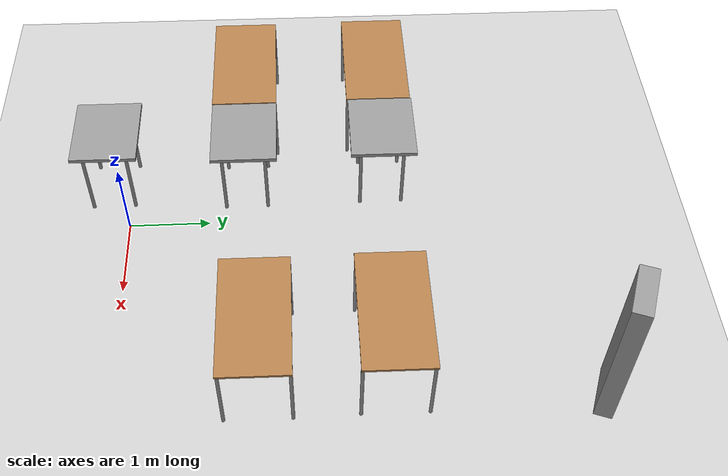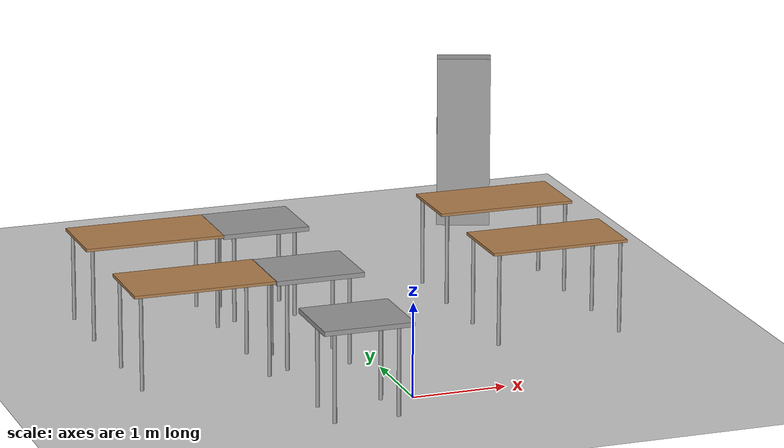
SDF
<sdf version="1.7">
 <world name="default">
  <model name="ground_plane">
   <static>1</static>
   <link name="link">
    <collision name="collision">
     <geometry><plane><normal>0 0 1</normal><size>100 100</size></plane></geometry>
     <surface>
      <contact><collide_bitmask>65535</collide_bitmask></contact>
      <friction><ode><mu>100</mu><mu2>50</mu2></ode></friction>
     </surface>
    </collision>
    <visual name="visual">
     <cast_shadows>0</cast_shadows>
     <geometry><plane><normal>0 0 1</normal><size>100 100</size></plane></geometry>
     <material>
      <script><uri>file://media/materials/scripts/gazebo.material</uri><name>Gazebo/Grey</name></script>
     </material>
    </visual>
   </link>
  </model>
  <model name="table">
   <static>1</static>
   <link name="link">
    <collision name="surface">
     <pose>0 0 1 0 -0 0</pose>
     <geometry><box><size>1.5 0.8 0.03</size></box></geometry>
     <surface><friction><ode><mu>0.6</mu><mu2>0.6</mu2></ode></friction></surface>
    </collision>
    <visual name="visual1">
     <pose>0 0 1 0 -0 0</pose>
     <geometry><box><size>1.5 0.8 0.03</size></box></geometry>
     <material>
      <script><uri>file://media/materials/scripts/gazebo.material</uri><name>Gazebo/Wood</name></script>
     </material>
    </visual>
    <collision name="front_left_leg">
     <pose>0.68 0.38 0.5 0 -0 0</pose>
     <geometry><cylinder><radius>0.02</radius><length>1</length></cylinder></geometry>
    </collision>
    <visual name="front_left_leg">
     <pose>0.68 0.38 0.5 0 -0 0</pose>
     <geometry><cylinder><radius>0.02</radius><length>1</length></cylinder></geometry>
     <material>
      <script><uri>file://media/materials/scripts/gazebo.material</uri><name>Gazebo/Grey</name></script>
     </material>
    </visual>
    <collision name="front_right_leg">
     <pose>0.68 -0.38 0.5 0 -0 0</pose>
     <geometry><cylinder><radius>0.02</radius><length>1</length></cylinder></geometry>
    </collision>
    <visual name="front_right_leg">
     <pose>0.68 -0.38 0.5 0 -0 0</pose>
     <geometry><cylinder><radius>0.02</radius><length>1</length></cylinder></geometry>
     <material>
      <script><uri>file://media/materials/scripts/gazebo.material</uri><name>Gazebo/Grey</name></script>
     </material>
    </visual>
    <collision name="back_right_leg">
     <pose>-0.68 -0.38 0.5 0 -0 0</pose>
     <geometry><cylinder><radius>0.02</radius><length>1</length></cylinder></geometry>
    </collision>
    <visual name="back_right_leg">
     <pose>-0.68 -0.38 0.5 0 -0 0</pose>
     <geometry><cylinder><radius>0.02</radius><length>1</length></cylinder></geometry>
     <material>
      <script><uri>file://media/materials/scripts/gazebo.material</uri><name>Gazebo/Grey</name></script>
     </material>
    </visual>
    <collision name="back_left_leg">
     <pose>-0.68 0.38 0.5 0 -0 0</pose>
     <geometry><cylinder><radius>0.02</radius><length>1</length></cylinder></geometry>
    </collision>
    <visual name="back_left_leg">
     <pose>-0.68 0.38 0.5 0 -0 0</pose>
     <geometry><cylinder><radius>0.02</radius><length>1</length></cylinder></geometry>
     <material>
      <script><uri>file://media/materials/scripts/gazebo.material</uri><name>Gazebo/Grey</name></script>
     </material>
    </visual>
   </link>
   <pose>-1.86656 3.15657 0 0 -0 0</pose>
  </model>
  <model name="table_clone">
   <static>1</static>
   <link name="link">
    <collision name="surface">
     <pose>0 0 1 0 -0 0</pose>
     <geometry><box><size>1.5 0.8 0.03</size></box></geometry>
     <surface><friction><ode><mu>0.6</mu><mu2>0.6</mu2></ode></friction></surface>
    </collision>
    <visual name="visual1">
     <pose>0 0 1 0 -0 0</pose>
     <geometry><box><size>1.5 0.8 0.03</size></box></geometry>
     <material>
      <script><uri>file://media/materials/scripts/gazebo.material</uri><name>Gazebo/Wood</name></script>
     </material>
    </visual>
    <collision name="front_left_leg">
     <pose>0.68 0.38 0.5 0 -0 0</pose>
     <geometry><cylinder><radius>0.02</radius><length>1</length></cylinder></geometry>
    </collision>
    <visual name="front_left_leg">
     <pose>0.68 0.38 0.5 0 -0 0</pose>
     <geometry><cylinder><radius>0.02</radius><length>1</length></cylinder></geometry>
     <material>
      <script><uri>file://media/materials/scripts/gazebo.material</uri><name>Gazebo/Grey</name></script>
     </material>
    </visual>
    <collision name="front_right_leg">
     <pose>0.68 -0.38 0.5 0 -0 0</pose>
     <geometry><cylinder><radius>0.02</radius><length>1</length></cylinder></geometry>
    </collision>
    <visual name="front_right_leg">
     <pose>0.68 -0.38 0.5 0 -0 0</pose>
     <geometry><cylinder><radius>0.02</radius><length>1</length></cylinder></geometry>
     <material>
      <script><uri>file://media/materials/scripts/gazebo.material</uri><name>Gazebo/Grey</name></script>
     </material>
    </visual>
    <collision name="back_right_leg">
     <pose>-0.68 -0.38 0.5 0 -0 0</pose>
     <geometry><cylinder><radius>0.02</radius><length>1</length></cylinder></geometry>
    </collision>
    <visual name="back_right_leg">
     <pose>-0.68 -0.38 0.5 0 -0 0</pose>
     <geometry><cylinder><radius>0.02</radius><length>1</length></cylinder></geometry>
     <material>
      <script><uri>file://media/materials/scripts/gazebo.material</uri><name>Gazebo/Grey</name></script>
     </material>
    </visual>
    <collision name="back_left_leg">
     <pose>-0.68 0.38 0.5 0 -0 0</pose>
     <geometry><cylinder><radius>0.02</radius><length>1</length></cylinder></geometry>
    </collision>
    <visual name="back_left_leg">
     <pose>-0.68 0.38 0.5 0 -0 0</pose>
     <geometry><cylinder><radius>0.02</radius><length>1</length></cylinder></geometry>
     <material>
      <script><uri>file://media/materials/scripts/gazebo.material</uri><name>Gazebo/Grey</name></script>
     </material>
    </visual>
   </link>
   <pose>2.06637 3.12648 0 0 -0 0</pose>
  </model>
  <model name="table_clone_0">
   <static>1</static>
   <link name="link">
    <collision name="surface">
     <pose>0 0 1 0 -0 0</pose>
     <geometry><box><size>1.5 0.8 0.03</size></box></geometry>
     <surface><friction><ode><mu>0.6</mu><mu2>0.6</mu2></ode></friction></surface>
    </collision>
    <visual name="visual1">
     <pose>0 0 1 0 -0 0</pose>
     <geometry><box><size>1.5 0.8 0.03</size></box></geometry>
     <material>
      <script><uri>file://media/materials/scripts/gazebo.material</uri><name>Gazebo/Wood</name></script>
     </material>
    </visual>
    <collision name="front_left_leg">
     <pose>0.68 0.38 0.5 0 -0 0</pose>
     <geometry><cylinder><radius>0.02</radius><length>1</length></cylinder></geometry>
    </collision>
    <visual name="front_left_leg">
     <pose>0.68 0.38 0.5 0 -0 0</pose>
     <geometry><cylinder><radius>0.02</radius><length>1</length></cylinder></geometry>
     <material>
      <script><uri>file://media/materials/scripts/gazebo.material</uri><name>Gazebo/Grey</name></script>
     </material>
    </visual>
    <collision name="front_right_leg">
     <pose>0.68 -0.38 0.5 0 -0 0</pose>
     <geometry><cylinder><radius>0.02</radius><length>1</length></cylinder></geometry>
    </collision>
    <visual name="front_right_leg">
     <pose>0.68 -0.38 0.5 0 -0 0</pose>
     <geometry><cylinder><radius>0.02</radius><length>1</length></cylinder></geometry>
     <material>
      <script><uri>file://media/materials/scripts/gazebo.material</uri><name>Gazebo/Grey</name></script>
     </material>
    </visual>
    <collision name="back_right_leg">
     <pose>-0.68 -0.38 0.5 0 -0 0</pose>
     <geometry><cylinder><radius>0.02</radius><length>1</length></cylinder></geometry>
    </collision>
    <visual name="back_right_leg">
     <pose>-0.68 -0.38 0.5 0 -0 0</pose>
     <geometry><cylinder><radius>0.02</radius><length>1</length></cylinder></geometry>
     <material>
      <script><uri>file://media/materials/scripts/gazebo.material</uri><name>Gazebo/Grey</name></script>
     </material>
    </visual>
    <collision name="back_left_leg">
     <pose>-0.68 0.38 0.5 0 -0 0</pose>
     <geometry><cylinder><radius>0.02</radius><length>1</length></cylinder></geometry>
    </collision>
    <visual name="back_left_leg">
     <pose>-0.68 0.38 0.5 0 -0 0</pose>
     <geometry><cylinder><radius>0.02</radius><length>1</length></cylinder></geometry>
     <material>
      <script><uri>file://media/materials/scripts/gazebo.material</uri><name>Gazebo/Grey</name></script>
     </material>
    </visual>
   </link>
   <pose>-1.84278 1.47445 0 0 -0 0</pose>
  </model>
  <model name="table_clone_1">
   <static>1</static>
   <link name="link">
    <collision name="surface">
     <pose>0 0 1 0 -0 0</pose>
     <geometry><box><size>1.5 0.8 0.03</size></box></geometry>
     <surface><friction><ode><mu>0.6</mu><mu2>0.6</mu2></ode></friction></surface>
    </collision>
    <visual name="visual1">
     <pose>0 0 1 0 -0 0</pose>
     <geometry><box><size>1.5 0.8 0.03</size></box></geometry>
     <material>
      <script><uri>file://media/materials/scripts/gazebo.material</uri><name>Gazebo/Wood</name></script>
     </material>
    </visual>
    <collision name="front_left_leg">
     <pose>0.68 0.38 0.5 0 -0 0</pose>
     <geometry><cylinder><radius>0.02</radius><length>1</length></cylinder></geometry>
    </collision>
    <visual name="front_left_leg">
     <pose>0.68 0.38 0.5 0 -0 0</pose>
     <geometry><cylinder><radius>0.02</radius><length>1</length></cylinder></geometry>
     <material>
      <script><uri>file://media/materials/scripts/gazebo.material</uri><name>Gazebo/Grey</name></script>
     </material>
    </visual>
    <collision name="front_right_leg">
     <pose>0.68 -0.38 0.5 0 -0 0</pose>
     <geometry><cylinder><radius>0.02</radius><length>1</length></cylinder></geometry>
    </collision>
    <visual name="front_right_leg">
     <pose>0.68 -0.38 0.5 0 -0 0</pose>
     <geometry><cylinder><radius>0.02</radius><length>1</length></cylinder></geometry>
     <material>
      <script><uri>file://media/materials/scripts/gazebo.material</uri><name>Gazebo/Grey</name></script>
     </material>
    </visual>
    <collision name="back_right_leg">
     <pose>-0.68 -0.38 0.5 0 -0 0</pose>
     <geometry><cylinder><radius>0.02</radius><length>1</length></cylinder></geometry>
    </collision>
    <visual name="back_right_leg">
     <pose>-0.68 -0.38 0.5 0 -0 0</pose>
     <geometry><cylinder><radius>0.02</radius><length>1</length></cylinder></geometry>
     <material>
      <script><uri>file://media/materials/scripts/gazebo.material</uri><name>Gazebo/Grey</name></script>
     </material>
    </visual>
    <collision name="back_left_leg">
     <pose>-0.68 0.38 0.5 0 -0 0</pose>
     <geometry><cylinder><radius>0.02</radius><length>1</length></cylinder></geometry>
    </collision>
    <visual name="back_left_leg">
     <pose>-0.68 0.38 0.5 0 -0 0</pose>
     <geometry><cylinder><radius>0.02</radius><length>1</length></cylinder></geometry>
     <material>
      <script><uri>file://media/materials/scripts/gazebo.material</uri><name>Gazebo/Grey</name></script>
     </material>
    </visual>
   </link>
   <pose>2.08707 1.6284 0 0 -0 0</pose>
  </model>
  <model name="503smalldesk">
   <link name="link">
    <inertial>
     <mass>0.0369798</mass>
     <inertia>
      <ixx>0.00196522</ixx>
      <ixy>0</ixy>
      <ixz>0</ixz>
      <iyy>0.00276457</iyy>
      <iyz>0</iyz>
      <izz>0.00471494</izz>
     </inertia>
    </inertial>
    <pose>-0.646649 -1.26581 0.489389 0 -0 0</pose>
    <visual name="visual">
     <geometry><box><size>0.945885 0.797062 0.049088</size></box></geometry>
     <material>
      <script><name>Gazebo/Grey</name><uri>file://media/materials/scripts/gazebo.material</uri></script>
      <shader type="pixel"/>
      <emissive>0 0 0 1</emissive>
     </material>
    </visual>
    <collision name="collision">
     <geometry><box><size>0.945885 0.797062 0.049088</size></box></geometry>
     <surface>
      <friction>
       <ode><mu>1</mu><mu2>1</mu2><fdir1>0 0 0</fdir1><slip1>0</slip1><slip2>0</slip2></ode>
       <torsional>
        <coefficient>1</coefficient>
        <patch_radius>0</patch_radius>
        <surface_radius>0</surface_radius>
        <use_patch_radius>1</use_patch_radius>
        <ode><slip>0</slip></ode>
       </torsional>
      </friction>
      <bounce><restitution_coefficient>0</restitution_coefficient><threshold>1e+06</threshold></bounce>
      <contact>
       <collide_without_contact>0</collide_without_contact>
       <collide_without_contact_bitmask>1</collide_without_contact_bitmask>
       <collide_bitmask>1</collide_bitmask>
       <ode>
        <soft_cfm>0</soft_cfm>
        <soft_erp>0.2</soft_erp>
        <kp>1e+13</kp>
        <kd>1</kd>
        <max_vel>0.01</max_vel>
        <min_depth>0</min_depth>
       </ode>
       <bullet>
        <split_impulse>1</split_impulse>
        <split_impulse_penetration_threshold>-0.01</split_impulse_penetration_threshold>
        <soft_cfm>0</soft_cfm>
        <soft_erp>0.2</soft_erp>
        <kp>1e+13</kp>
        <kd>1</kd>
       </bullet>
      </contact>
     </surface>
    </collision>
   </link>
   <link name="link_0">
    <inertial>
     <mass>0.00191364</mass>
     <inertia>
      <ixx>0.000157258</ixx>
      <ixy>0</ixy>
      <ixz>0</ixz>
      <iyy>0.000157258</iyy>
      <iyz>0</iyz>
      <izz>4.33466e-07</izz>
     </inertia>
    </inertial>
    <pose>-0.966123 -1.52923 -0.000879 1e-05 -0 0</pose>
    <visual name="visual">
     <geometry><cylinder><radius>0.0212844</radius><length>0.992355</length></cylinder></geometry>
     <material>
      <lighting>1</lighting>
      <script><uri>file://media/materials/scripts/gazebo.material</uri><name>Gazebo/Grey</name></script>
      <shader type="pixel"/>
      <emissive>0 0 0 1</emissive>
     </material>
    </visual>
    <collision name="collision">
     <geometry><cylinder><radius>0.021284</radius><length>0.992355</length></cylinder></geometry>
     <surface>
      <friction>
       <ode><mu>1</mu><mu2>1</mu2><fdir1>0 0 0</fdir1><slip1>0</slip1><slip2>0</slip2></ode>
       <torsional>
        <coefficient>1</coefficient>
        <patch_radius>0</patch_radius>
        <surface_radius>0</surface_radius>
        <use_patch_radius>1</use_patch_radius>
        <ode><slip>0</slip></ode>
       </torsional>
      </friction>
      <bounce><restitution_coefficient>0</restitution_coefficient><threshold>1e+06</threshold></bounce>
      <contact>
       <collide_without_contact>0</collide_without_contact>
       <collide_without_contact_bitmask>1</collide_without_contact_bitmask>
       <collide_bitmask>1</collide_bitmask>
       <ode>
        <soft_cfm>0</soft_cfm>
        <soft_erp>0.2</soft_erp>
        <kp>1e+13</kp>
        <kd>1</kd>
        <max_vel>0.01</max_vel>
        <min_depth>0</min_depth>
       </ode>
       <bullet>
        <split_impulse>1</split_impulse>
        <split_impulse_penetration_threshold>-0.01</split_impulse_penetration_threshold>
        <soft_cfm>0</soft_cfm>
        <soft_erp>0.2</soft_erp>
        <kp>1e+13</kp>
        <kd>1</kd>
       </bullet>
      </contact>
     </surface>
    </collision>
   </link>
   <link name="link_0_clone">
    <inertial>
     <mass>0.00191456</mass>
     <inertia>
      <ixx>0.000157333</ixx>
      <ixy>0</ixy>
      <ixz>0</ixz>
      <iyy>0.000157333</iyy>
      <iyz>0</iyz>
      <izz>4.33672e-07</izz>
     </inertia>
    </inertial>
    <pose>-0.293148 -1.53733 -0.000894 2e-05 -0 0</pose>
    <visual name="visual">
     <geometry><cylinder><radius>0.0212844</radius><length>0.992355</length></cylinder></geometry>
     <material>
      <lighting>1</lighting>
      <script><uri>file://media/materials/scripts/gazebo.material</uri><name>Gazebo/Grey</name></script>
      <shader type="pixel"/>
      <emissive>0 0 0 1</emissive>
     </material>
    </visual>
    <collision name="collision">
     <geometry><cylinder><radius>0.021284</radius><length>0.992355</length></cylinder></geometry>
     <surface>
      <friction>
       <ode><mu>1</mu><mu2>1</mu2><fdir1>0 0 0</fdir1><slip1>0</slip1><slip2>0</slip2></ode>
       <torsional>
        <coefficient>1</coefficient>
        <patch_radius>0</patch_radius>
        <surface_radius>0</surface_radius>
        <use_patch_radius>1</use_patch_radius>
        <ode><slip>0</slip></ode>
       </torsional>
      </friction>
      <bounce><restitution_coefficient>0</restitution_coefficient><threshold>1e+06</threshold></bounce>
      <contact>
       <collide_without_contact>0</collide_without_contact>
       <collide_without_contact_bitmask>1</collide_without_contact_bitmask>
       <collide_bitmask>1</collide_bitmask>
       <ode>
        <soft_cfm>0</soft_cfm>
        <soft_erp>0.2</soft_erp>
        <kp>1e+13</kp>
        <kd>1</kd>
        <max_vel>0.01</max_vel>
        <min_depth>0</min_depth>
       </ode>
       <bullet>
        <split_impulse>1</split_impulse>
        <split_impulse_penetration_threshold>-0.01</split_impulse_penetration_threshold>
        <soft_cfm>0</soft_cfm>
        <soft_erp>0.2</soft_erp>
        <kp>1e+13</kp>
        <kd>1</kd>
       </bullet>
      </contact>
     </surface>
    </collision>
   </link>
   <link name="link_0_clone_0">
    <inertial>
     <mass>0.00191364</mass>
     <inertia>
      <ixx>0.000157258</ixx>
      <ixy>0</ixy>
      <ixz>0</ixz>
      <iyy>0.000157258</iyy>
      <iyz>0</iyz>
      <izz>4.33466e-07</izz>
     </inertia>
    </inertial>
    <pose>-0.297233 -1.01304 -0.000889 2e-05 -0 0</pose>
    <visual name="visual">
     <geometry><cylinder><radius>0.0212844</radius><length>0.992355</length></cylinder></geometry>
     <material>
      <lighting>1</lighting>
      <script><uri>file://media/materials/scripts/gazebo.material</uri><name>Gazebo/Grey</name></script>
      <shader type="pixel"/>
      <emissive>0 0 0 1</emissive>
     </material>
    </visual>
    <collision name="collision">
     <geometry><cylinder><radius>0.021284</radius><length>0.992355</length></cylinder></geometry>
     <surface>
      <friction>
       <ode><mu>1</mu><mu2>1</mu2><fdir1>0 0 0</fdir1><slip1>0</slip1><slip2>0</slip2></ode>
       <torsional>
        <coefficient>1</coefficient>
        <patch_radius>0</patch_radius>
        <surface_radius>0</surface_radius>
        <use_patch_radius>1</use_patch_radius>
        <ode><slip>0</slip></ode>
       </torsional>
      </friction>
      <bounce><restitution_coefficient>0</restitution_coefficient><threshold>1e+06</threshold></bounce>
      <contact>
       <collide_without_contact>0</collide_without_contact>
       <collide_without_contact_bitmask>1</collide_without_contact_bitmask>
       <collide_bitmask>1</collide_bitmask>
       <ode>
        <soft_cfm>0</soft_cfm>
        <soft_erp>0.2</soft_erp>
        <kp>1e+13</kp>
        <kd>1</kd>
        <max_vel>0.01</max_vel>
        <min_depth>0</min_depth>
       </ode>
       <bullet>
        <split_impulse>1</split_impulse>
        <split_impulse_penetration_threshold>-0.01</split_impulse_penetration_threshold>
        <soft_cfm>0</soft_cfm>
        <soft_erp>0.2</soft_erp>
        <kp>1e+13</kp>
        <kd>1</kd>
       </bullet>
      </contact>
     </surface>
    </collision>
   </link>
   <link name="link_0_clone_1">
    <inertial>
     <mass>0.00191364</mass>
     <inertia>
      <ixx>0.000157258</ixx>
      <ixy>0</ixy>
      <ixz>0</ixz>
      <iyy>0.000157258</iyy>
      <iyz>0</iyz>
      <izz>4.33466e-07</izz>
     </inertia>
    </inertial>
    <pose>-0.969588 -1.01272 -0.000889 2e-05 -0 0</pose>
    <visual name="visual">
     <geometry><cylinder><radius>0.0212844</radius><length>0.992355</length></cylinder></geometry>
     <material>
      <lighting>1</lighting>
      <script><uri>file://media/materials/scripts/gazebo.material</uri><name>Gazebo/Grey</name></script>
      <shader type="pixel"/>
      <emissive>0 0 0 1</emissive>
     </material>
    </visual>
    <collision name="collision">
     <geometry><cylinder><radius>0.021284</radius><length>0.992355</length></cylinder></geometry>
     <surface>
      <friction>
       <ode><mu>1</mu><mu2>1</mu2><fdir1>0 0 0</fdir1><slip1>0</slip1><slip2>0</slip2></ode>
       <torsional>
        <coefficient>1</coefficient>
        <patch_radius>0</patch_radius>
        <surface_radius>0</surface_radius>
        <use_patch_radius>1</use_patch_radius>
        <ode><slip>0</slip></ode>
       </torsional>
      </friction>
      <bounce><restitution_coefficient>0</restitution_coefficient><threshold>1e+06</threshold></bounce>
      <contact>
       <collide_without_contact>0</collide_without_contact>
       <collide_without_contact_bitmask>1</collide_without_contact_bitmask>
       <collide_bitmask>1</collide_bitmask>
       <ode>
        <soft_cfm>0</soft_cfm>
        <soft_erp>0.2</soft_erp>
        <kp>1e+13</kp>
        <kd>1</kd>
        <max_vel>0.01</max_vel>
        <min_depth>0</min_depth>
       </ode>
       <bullet>
        <split_impulse>1</split_impulse>
        <split_impulse_penetration_threshold>-0.01</split_impulse_penetration_threshold>
        <soft_cfm>0</soft_cfm>
        <soft_erp>0.2</soft_erp>
        <kp>1e+13</kp>
        <kd>1</kd>
       </bullet>
      </contact>
     </surface>
    </collision>
   </link>
   <joint name="link_JOINT_13" type="fixed">
    <parent>link</parent>
    <child>link_0</child>
    <physics>
     <ode><limit><cfm>0</cfm><erp>0.2</erp></limit><suspension><cfm>0</cfm><erp>0.2</erp></suspension></ode>
    </physics>
   </joint>
   <joint name="link_JOINT_14" type="fixed">
    <parent>link</parent>
    <child>link_0_clone_1</child>
    <physics>
     <ode><limit><cfm>0</cfm><erp>0.2</erp></limit><suspension><cfm>0</cfm><erp>0.2</erp></suspension></ode>
    </physics>
   </joint>
   <joint name="link_JOINT_15" type="fixed">
    <parent>link</parent>
    <child>link_0_clone_0</child>
    <physics>
     <ode><limit><cfm>0</cfm><erp>0.2</erp></limit><suspension><cfm>0</cfm><erp>0.2</erp></suspension></ode>
    </physics>
   </joint>
   <joint name="link_JOINT_16" type="fixed">
    <parent>link</parent>
    <child>link_0_clone</child>
    <physics>
     <ode><limit><cfm>0</cfm><erp>0.2</erp></limit><suspension><cfm>0</cfm><erp>0.2</erp></suspension></ode>
    </physics>
   </joint>
   <static>0</static>
   <pose>0.008425 4.43744 0.497074 4e-06 -1.1e-05 -0.000458</pose>
  </model>
  <model name="503smalldesk_clone">
   <link name="link">
    <inertial>
     <mass>0.0369798</mass>
     <inertia>
      <ixx>0.00196522</ixx>
      <ixy>0</ixy>
      <ixz>0</ixz>
      <iyy>0.00276457</iyy>
      <iyz>0</iyz>
      <izz>0.00471494</izz>
     </inertia>
    </inertial>
    <pose>-0.646649 -1.26581 0.489389 0 -0 0</pose>
    <visual name="visual">
     <geometry><box><size>0.945885 0.797062 0.049088</size></box></geometry>
     <material>
      <script><name>Gazebo/Grey</name><uri>file://media/materials/scripts/gazebo.material</uri></script>
      <shader type="pixel"/>
      <emissive>0 0 0 1</emissive>
     </material>
    </visual>
    <collision name="collision">
     <geometry><box><size>0.945885 0.797062 0.049088</size></box></geometry>
     <surface>
      <friction>
       <ode><mu>1</mu><mu2>1</mu2><fdir1>0 0 0</fdir1><slip1>0</slip1><slip2>0</slip2></ode>
       <torsional>
        <coefficient>1</coefficient>
        <patch_radius>0</patch_radius>
        <surface_radius>0</surface_radius>
        <use_patch_radius>1</use_patch_radius>
        <ode><slip>0</slip></ode>
       </torsional>
      </friction>
      <bounce><restitution_coefficient>0</restitution_coefficient><threshold>1e+06</threshold></bounce>
      <contact>
       <collide_without_contact>0</collide_without_contact>
       <collide_without_contact_bitmask>1</collide_without_contact_bitmask>
       <collide_bitmask>1</collide_bitmask>
       <ode>
        <soft_cfm>0</soft_cfm>
        <soft_erp>0.2</soft_erp>
        <kp>1e+13</kp>
        <kd>1</kd>
        <max_vel>0.01</max_vel>
        <min_depth>0</min_depth>
       </ode>
       <bullet>
        <split_impulse>1</split_impulse>
        <split_impulse_penetration_threshold>-0.01</split_impulse_penetration_threshold>
        <soft_cfm>0</soft_cfm>
        <soft_erp>0.2</soft_erp>
        <kp>1e+13</kp>
        <kd>1</kd>
       </bullet>
      </contact>
     </surface>
    </collision>
   </link>
   <link name="link_0">
    <inertial>
     <mass>0.00191364</mass>
     <inertia>
      <ixx>0.000157258</ixx>
      <ixy>0</ixy>
      <ixz>0</ixz>
      <iyy>0.000157258</iyy>
      <iyz>0</iyz>
      <izz>4.33466e-07</izz>
     </inertia>
    </inertial>
    <pose>-0.966123 -1.52923 -0.000879 1e-05 -0 0</pose>
    <visual name="visual">
     <geometry><cylinder><radius>0.0212844</radius><length>0.992355</length></cylinder></geometry>
     <material>
      <lighting>1</lighting>
      <script><uri>file://media/materials/scripts/gazebo.material</uri><name>Gazebo/Grey</name></script>
      <shader type="pixel"/>
      <emissive>0 0 0 1</emissive>
     </material>
    </visual>
    <collision name="collision">
     <geometry><cylinder><radius>0.021284</radius><length>0.992355</length></cylinder></geometry>
     <surface>
      <friction>
       <ode><mu>1</mu><mu2>1</mu2><fdir1>0 0 0</fdir1><slip1>0</slip1><slip2>0</slip2></ode>
       <torsional>
        <coefficient>1</coefficient>
        <patch_radius>0</patch_radius>
        <surface_radius>0</surface_radius>
        <use_patch_radius>1</use_patch_radius>
        <ode><slip>0</slip></ode>
       </torsional>
      </friction>
      <bounce><restitution_coefficient>0</restitution_coefficient><threshold>1e+06</threshold></bounce>
      <contact>
       <collide_without_contact>0</collide_without_contact>
       <collide_without_contact_bitmask>1</collide_without_contact_bitmask>
       <collide_bitmask>1</collide_bitmask>
       <ode>
        <soft_cfm>0</soft_cfm>
        <soft_erp>0.2</soft_erp>
        <kp>1e+13</kp>
        <kd>1</kd>
        <max_vel>0.01</max_vel>
        <min_depth>0</min_depth>
       </ode>
       <bullet>
        <split_impulse>1</split_impulse>
        <split_impulse_penetration_threshold>-0.01</split_impulse_penetration_threshold>
        <soft_cfm>0</soft_cfm>
        <soft_erp>0.2</soft_erp>
        <kp>1e+13</kp>
        <kd>1</kd>
       </bullet>
      </contact>
     </surface>
    </collision>
   </link>
   <link name="link_0_clone">
    <inertial>
     <mass>0.00191456</mass>
     <inertia>
      <ixx>0.000157333</ixx>
      <ixy>0</ixy>
      <ixz>0</ixz>
      <iyy>0.000157333</iyy>
      <iyz>0</iyz>
      <izz>4.33672e-07</izz>
     </inertia>
    </inertial>
    <pose>-0.293148 -1.53733 -0.000894 2e-05 -0 0</pose>
    <visual name="visual">
     <geometry><cylinder><radius>0.0212844</radius><length>0.992355</length></cylinder></geometry>
     <material>
      <lighting>1</lighting>
      <script><uri>file://media/materials/scripts/gazebo.material</uri><name>Gazebo/Grey</name></script>
      <shader type="pixel"/>
      <emissive>0 0 0 1</emissive>
     </material>
    </visual>
    <collision name="collision">
     <geometry><cylinder><radius>0.021284</radius><length>0.992355</length></cylinder></geometry>
     <surface>
      <friction>
       <ode><mu>1</mu><mu2>1</mu2><fdir1>0 0 0</fdir1><slip1>0</slip1><slip2>0</slip2></ode>
       <torsional>
        <coefficient>1</coefficient>
        <patch_radius>0</patch_radius>
        <surface_radius>0</surface_radius>
        <use_patch_radius>1</use_patch_radius>
        <ode><slip>0</slip></ode>
       </torsional>
      </friction>
      <bounce><restitution_coefficient>0</restitution_coefficient><threshold>1e+06</threshold></bounce>
      <contact>
       <collide_without_contact>0</collide_without_contact>
       <collide_without_contact_bitmask>1</collide_without_contact_bitmask>
       <collide_bitmask>1</collide_bitmask>
       <ode>
        <soft_cfm>0</soft_cfm>
        <soft_erp>0.2</soft_erp>
        <kp>1e+13</kp>
        <kd>1</kd>
        <max_vel>0.01</max_vel>
        <min_depth>0</min_depth>
       </ode>
       <bullet>
        <split_impulse>1</split_impulse>
        <split_impulse_penetration_threshold>-0.01</split_impulse_penetration_threshold>
        <soft_cfm>0</soft_cfm>
        <soft_erp>0.2</soft_erp>
        <kp>1e+13</kp>
        <kd>1</kd>
       </bullet>
      </contact>
     </surface>
    </collision>
   </link>
   <link name="link_0_clone_0">
    <inertial>
     <mass>0.00191364</mass>
     <inertia>
      <ixx>0.000157258</ixx>
      <ixy>0</ixy>
      <ixz>0</ixz>
      <iyy>0.000157258</iyy>
      <iyz>0</iyz>
      <izz>4.33466e-07</izz>
     </inertia>
    </inertial>
    <pose>-0.297233 -1.01304 -0.000889 2e-05 -0 0</pose>
    <visual name="visual">
     <geometry><cylinder><radius>0.0212844</radius><length>0.992355</length></cylinder></geometry>
     <material>
      <lighting>1</lighting>
      <script><uri>file://media/materials/scripts/gazebo.material</uri><name>Gazebo/Grey</name></script>
      <shader type="pixel"/>
      <emissive>0 0 0 1</emissive>
     </material>
    </visual>
    <collision name="collision">
     <geometry><cylinder><radius>0.021284</radius><length>0.992355</length></cylinder></geometry>
     <surface>
      <friction>
       <ode><mu>1</mu><mu2>1</mu2><fdir1>0 0 0</fdir1><slip1>0</slip1><slip2>0</slip2></ode>
       <torsional>
        <coefficient>1</coefficient>
        <patch_radius>0</patch_radius>
        <surface_radius>0</surface_radius>
        <use_patch_radius>1</use_patch_radius>
        <ode><slip>0</slip></ode>
       </torsional>
      </friction>
      <bounce><restitution_coefficient>0</restitution_coefficient><threshold>1e+06</threshold></bounce>
      <contact>
       <collide_without_contact>0</collide_without_contact>
       <collide_without_contact_bitmask>1</collide_without_contact_bitmask>
       <collide_bitmask>1</collide_bitmask>
       <ode>
        <soft_cfm>0</soft_cfm>
        <soft_erp>0.2</soft_erp>
        <kp>1e+13</kp>
        <kd>1</kd>
        <max_vel>0.01</max_vel>
        <min_depth>0</min_depth>
       </ode>
       <bullet>
        <split_impulse>1</split_impulse>
        <split_impulse_penetration_threshold>-0.01</split_impulse_penetration_threshold>
        <soft_cfm>0</soft_cfm>
        <soft_erp>0.2</soft_erp>
        <kp>1e+13</kp>
        <kd>1</kd>
       </bullet>
      </contact>
     </surface>
    </collision>
   </link>
   <link name="link_0_clone_1">
    <inertial>
     <mass>0.00191364</mass>
     <inertia>
      <ixx>0.000157258</ixx>
      <ixy>0</ixy>
      <ixz>0</ixz>
      <iyy>0.000157258</iyy>
      <iyz>0</iyz>
      <izz>4.33466e-07</izz>
     </inertia>
    </inertial>
    <pose>-0.969588 -1.01272 -0.000889 2e-05 -0 0</pose>
    <visual name="visual">
     <geometry><cylinder><radius>0.0212844</radius><length>0.992355</length></cylinder></geometry>
     <material>
      <lighting>1</lighting>
      <script><uri>file://media/materials/scripts/gazebo.material</uri><name>Gazebo/Grey</name></script>
      <shader type="pixel"/>
      <emissive>0 0 0 1</emissive>
     </material>
    </visual>
    <collision name="collision">
     <geometry><cylinder><radius>0.021284</radius><length>0.992355</length></cylinder></geometry>
     <surface>
      <friction>
       <ode><mu>1</mu><mu2>1</mu2><fdir1>0 0 0</fdir1><slip1>0</slip1><slip2>0</slip2></ode>
       <torsional>
        <coefficient>1</coefficient>
        <patch_radius>0</patch_radius>
        <surface_radius>0</surface_radius>
        <use_patch_radius>1</use_patch_radius>
        <ode><slip>0</slip></ode>
       </torsional>
      </friction>
      <bounce><restitution_coefficient>0</restitution_coefficient><threshold>1e+06</threshold></bounce>
      <contact>
       <collide_without_contact>0</collide_without_contact>
       <collide_without_contact_bitmask>1</collide_without_contact_bitmask>
       <collide_bitmask>1</collide_bitmask>
       <ode>
        <soft_cfm>0</soft_cfm>
        <soft_erp>0.2</soft_erp>
        <kp>1e+13</kp>
        <kd>1</kd>
        <max_vel>0.01</max_vel>
        <min_depth>0</min_depth>
       </ode>
       <bullet>
        <split_impulse>1</split_impulse>
        <split_impulse_penetration_threshold>-0.01</split_impulse_penetration_threshold>
        <soft_cfm>0</soft_cfm>
        <soft_erp>0.2</soft_erp>
        <kp>1e+13</kp>
        <kd>1</kd>
       </bullet>
      </contact>
     </surface>
    </collision>
   </link>
   <joint name="link_JOINT_13" type="fixed">
    <parent>link</parent>
    <child>link_0</child>
    <physics>
     <ode><limit><cfm>0</cfm><erp>0.2</erp></limit><suspension><cfm>0</cfm><erp>0.2</erp></suspension></ode>
    </physics>
   </joint>
   <joint name="link_JOINT_14" type="fixed">
    <parent>link</parent>
    <child>link_0_clone_1</child>
    <physics>
     <ode><limit><cfm>0</cfm><erp>0.2</erp></limit><suspension><cfm>0</cfm><erp>0.2</erp></suspension></ode>
    </physics>
   </joint>
   <joint name="link_JOINT_15" type="fixed">
    <parent>link</parent>
    <child>link_0_clone_0</child>
    <physics>
     <ode><limit><cfm>0</cfm><erp>0.2</erp></limit><suspension><cfm>0</cfm><erp>0.2</erp></suspension></ode>
    </physics>
   </joint>
   <joint name="link_JOINT_16" type="fixed">
    <parent>link</parent>
    <child>link_0_clone</child>
    <physics>
     <ode><limit><cfm>0</cfm><erp>0.2</erp></limit><suspension><cfm>0</cfm><erp>0.2</erp></suspension></ode>
    </physics>
   </joint>
   <static>0</static>
   <pose>0.034664 2.7419 0.497073 5e-06 -1.1e-05 0.000363</pose>
  </model>
  <model name="503smalldesk_clone_0">
   <link name="link">
    <inertial>
     <mass>0.0369798</mass>
     <inertia>
      <ixx>0.00196522</ixx>
      <ixy>0</ixy>
      <ixz>0</ixz>
      <iyy>0.00276457</iyy>
      <iyz>0</iyz>
      <izz>0.00471494</izz>
     </inertia>
    </inertial>
    <pose>-0.646649 -1.26581 0.489389 0 -0 0</pose>
    <visual name="visual">
     <geometry><box><size>0.945885 0.797062 0.049088</size></box></geometry>
     <material>
      <script><name>Gazebo/Grey</name><uri>file://media/materials/scripts/gazebo.material</uri></script>
      <shader type="pixel"/>
      <emissive>0 0 0 1</emissive>
     </material>
    </visual>
    <collision name="collision">
     <geometry><box><size>0.945885 0.797062 0.049088</size></box></geometry>
     <surface>
      <friction>
       <ode><mu>1</mu><mu2>1</mu2><fdir1>0 0 0</fdir1><slip1>0</slip1><slip2>0</slip2></ode>
       <torsional>
        <coefficient>1</coefficient>
        <patch_radius>0</patch_radius>
        <surface_radius>0</surface_radius>
        <use_patch_radius>1</use_patch_radius>
        <ode><slip>0</slip></ode>
       </torsional>
      </friction>
      <bounce><restitution_coefficient>0</restitution_coefficient><threshold>1e+06</threshold></bounce>
      <contact>
       <collide_without_contact>0</collide_without_contact>
       <collide_without_contact_bitmask>1</collide_without_contact_bitmask>
       <collide_bitmask>1</collide_bitmask>
       <ode>
        <soft_cfm>0</soft_cfm>
        <soft_erp>0.2</soft_erp>
        <kp>1e+13</kp>
        <kd>1</kd>
        <max_vel>0.01</max_vel>
        <min_depth>0</min_depth>
       </ode>
       <bullet>
        <split_impulse>1</split_impulse>
        <split_impulse_penetration_threshold>-0.01</split_impulse_penetration_threshold>
        <soft_cfm>0</soft_cfm>
        <soft_erp>0.2</soft_erp>
        <kp>1e+13</kp>
        <kd>1</kd>
       </bullet>
      </contact>
     </surface>
    </collision>
   </link>
   <link name="link_0">
    <inertial>
     <mass>0.00191364</mass>
     <inertia>
      <ixx>0.000157258</ixx>
      <ixy>0</ixy>
      <ixz>0</ixz>
      <iyy>0.000157258</iyy>
      <iyz>0</iyz>
      <izz>4.33466e-07</izz>
     </inertia>
    </inertial>
    <pose>-0.966123 -1.52923 -0.000879 1e-05 -0 0</pose>
    <visual name="visual">
     <geometry><cylinder><radius>0.0212844</radius><length>0.992355</length></cylinder></geometry>
     <material>
      <lighting>1</lighting>
      <script><uri>file://media/materials/scripts/gazebo.material</uri><name>Gazebo/Grey</name></script>
      <shader type="pixel"/>
      <emissive>0 0 0 1</emissive>
     </material>
    </visual>
    <collision name="collision">
     <geometry><cylinder><radius>0.021284</radius><length>0.992355</length></cylinder></geometry>
     <surface>
      <friction>
       <ode><mu>1</mu><mu2>1</mu2><fdir1>0 0 0</fdir1><slip1>0</slip1><slip2>0</slip2></ode>
       <torsional>
        <coefficient>1</coefficient>
        <patch_radius>0</patch_radius>
        <surface_radius>0</surface_radius>
        <use_patch_radius>1</use_patch_radius>
        <ode><slip>0</slip></ode>
       </torsional>
      </friction>
      <bounce><restitution_coefficient>0</restitution_coefficient><threshold>1e+06</threshold></bounce>
      <contact>
       <collide_without_contact>0</collide_without_contact>
       <collide_without_contact_bitmask>1</collide_without_contact_bitmask>
       <collide_bitmask>1</collide_bitmask>
       <ode>
        <soft_cfm>0</soft_cfm>
        <soft_erp>0.2</soft_erp>
        <kp>1e+13</kp>
        <kd>1</kd>
        <max_vel>0.01</max_vel>
        <min_depth>0</min_depth>
       </ode>
       <bullet>
        <split_impulse>1</split_impulse>
        <split_impulse_penetration_threshold>-0.01</split_impulse_penetration_threshold>
        <soft_cfm>0</soft_cfm>
        <soft_erp>0.2</soft_erp>
        <kp>1e+13</kp>
        <kd>1</kd>
       </bullet>
      </contact>
     </surface>
    </collision>
   </link>
   <link name="link_0_clone">
    <inertial>
     <mass>0.00191456</mass>
     <inertia>
      <ixx>0.000157333</ixx>
      <ixy>0</ixy>
      <ixz>0</ixz>
      <iyy>0.000157333</iyy>
      <iyz>0</iyz>
      <izz>4.33672e-07</izz>
     </inertia>
    </inertial>
    <pose>-0.293148 -1.53733 -0.000894 2e-05 -0 0</pose>
    <visual name="visual">
     <geometry><cylinder><radius>0.0212844</radius><length>0.992355</length></cylinder></geometry>
     <material>
      <lighting>1</lighting>
      <script><uri>file://media/materials/scripts/gazebo.material</uri><name>Gazebo/Grey</name></script>
      <shader type="pixel"/>
      <emissive>0 0 0 1</emissive>
     </material>
    </visual>
    <collision name="collision">
     <geometry><cylinder><radius>0.021284</radius><length>0.992355</length></cylinder></geometry>
     <surface>
      <friction>
       <ode><mu>1</mu><mu2>1</mu2><fdir1>0 0 0</fdir1><slip1>0</slip1><slip2>0</slip2></ode>
       <torsional>
        <coefficient>1</coefficient>
        <patch_radius>0</patch_radius>
        <surface_radius>0</surface_radius>
        <use_patch_radius>1</use_patch_radius>
        <ode><slip>0</slip></ode>
       </torsional>
      </friction>
      <bounce><restitution_coefficient>0</restitution_coefficient><threshold>1e+06</threshold></bounce>
      <contact>
       <collide_without_contact>0</collide_without_contact>
       <collide_without_contact_bitmask>1</collide_without_contact_bitmask>
       <collide_bitmask>1</collide_bitmask>
       <ode>
        <soft_cfm>0</soft_cfm>
        <soft_erp>0.2</soft_erp>
        <kp>1e+13</kp>
        <kd>1</kd>
        <max_vel>0.01</max_vel>
        <min_depth>0</min_depth>
       </ode>
       <bullet>
        <split_impulse>1</split_impulse>
        <split_impulse_penetration_threshold>-0.01</split_impulse_penetration_threshold>
        <soft_cfm>0</soft_cfm>
        <soft_erp>0.2</soft_erp>
        <kp>1e+13</kp>
        <kd>1</kd>
       </bullet>
      </contact>
     </surface>
    </collision>
   </link>
   <link name="link_0_clone_0">
    <inertial>
     <mass>0.00191364</mass>
     <inertia>
      <ixx>0.000157258</ixx>
      <ixy>0</ixy>
      <ixz>0</ixz>
      <iyy>0.000157258</iyy>
      <iyz>0</iyz>
      <izz>4.33466e-07</izz>
     </inertia>
    </inertial>
    <pose>-0.297233 -1.01304 -0.000889 2e-05 -0 0</pose>
    <visual name="visual">
     <geometry><cylinder><radius>0.0212844</radius><length>0.992355</length></cylinder></geometry>
     <material>
      <lighting>1</lighting>
      <script><uri>file://media/materials/scripts/gazebo.material</uri><name>Gazebo/Grey</name></script>
      <shader type="pixel"/>
      <emissive>0 0 0 1</emissive>
     </material>
    </visual>
    <collision name="collision">
     <geometry><cylinder><radius>0.021284</radius><length>0.992355</length></cylinder></geometry>
     <surface>
      <friction>
       <ode><mu>1</mu><mu2>1</mu2><fdir1>0 0 0</fdir1><slip1>0</slip1><slip2>0</slip2></ode>
       <torsional>
        <coefficient>1</coefficient>
        <patch_radius>0</patch_radius>
        <surface_radius>0</surface_radius>
        <use_patch_radius>1</use_patch_radius>
        <ode><slip>0</slip></ode>
       </torsional>
      </friction>
      <bounce><restitution_coefficient>0</restitution_coefficient><threshold>1e+06</threshold></bounce>
      <contact>
       <collide_without_contact>0</collide_without_contact>
       <collide_without_contact_bitmask>1</collide_without_contact_bitmask>
       <collide_bitmask>1</collide_bitmask>
       <ode>
        <soft_cfm>0</soft_cfm>
        <soft_erp>0.2</soft_erp>
        <kp>1e+13</kp>
        <kd>1</kd>
        <max_vel>0.01</max_vel>
        <min_depth>0</min_depth>
       </ode>
       <bullet>
        <split_impulse>1</split_impulse>
        <split_impulse_penetration_threshold>-0.01</split_impulse_penetration_threshold>
        <soft_cfm>0</soft_cfm>
        <soft_erp>0.2</soft_erp>
        <kp>1e+13</kp>
        <kd>1</kd>
       </bullet>
      </contact>
     </surface>
    </collision>
   </link>
   <link name="link_0_clone_1">
    <inertial>
     <mass>0.00191364</mass>
     <inertia>
      <ixx>0.000157258</ixx>
      <ixy>0</ixy>
      <ixz>0</ixz>
      <iyy>0.000157258</iyy>
      <iyz>0</iyz>
      <izz>4.33466e-07</izz>
     </inertia>
    </inertial>
    <pose>-0.969588 -1.01272 -0.000889 2e-05 -0 0</pose>
    <visual name="visual">
     <geometry><cylinder><radius>0.0212844</radius><length>0.992355</length></cylinder></geometry>
     <material>
      <lighting>1</lighting>
      <script><uri>file://media/materials/scripts/gazebo.material</uri><name>Gazebo/Grey</name></script>
      <shader type="pixel"/>
      <emissive>0 0 0 1</emissive>
     </material>
    </visual>
    <collision name="collision">
     <geometry><cylinder><radius>0.021284</radius><length>0.992355</length></cylinder></geometry>
     <surface>
      <friction>
       <ode><mu>1</mu><mu2>1</mu2><fdir1>0 0 0</fdir1><slip1>0</slip1><slip2>0</slip2></ode>
       <torsional>
        <coefficient>1</coefficient>
        <patch_radius>0</patch_radius>
        <surface_radius>0</surface_radius>
        <use_patch_radius>1</use_patch_radius>
        <ode><slip>0</slip></ode>
       </torsional>
      </friction>
      <bounce><restitution_coefficient>0</restitution_coefficient><threshold>1e+06</threshold></bounce>
      <contact>
       <collide_without_contact>0</collide_without_contact>
       <collide_without_contact_bitmask>1</collide_without_contact_bitmask>
       <collide_bitmask>1</collide_bitmask>
       <ode>
        <soft_cfm>0</soft_cfm>
        <soft_erp>0.2</soft_erp>
        <kp>1e+13</kp>
        <kd>1</kd>
        <max_vel>0.01</max_vel>
        <min_depth>0</min_depth>
       </ode>
       <bullet>
        <split_impulse>1</split_impulse>
        <split_impulse_penetration_threshold>-0.01</split_impulse_penetration_threshold>
        <soft_cfm>0</soft_cfm>
        <soft_erp>0.2</soft_erp>
        <kp>1e+13</kp>
        <kd>1</kd>
       </bullet>
      </contact>
     </surface>
    </collision>
   </link>
   <joint name="link_JOINT_13" type="fixed">
    <parent>link</parent>
    <child>link_0</child>
    <physics>
     <ode><limit><cfm>0</cfm><erp>0.2</erp></limit><suspension><cfm>0</cfm><erp>0.2</erp></suspension></ode>
    </physics>
   </joint>
   <joint name="link_JOINT_14" type="fixed">
    <parent>link</parent>
    <child>link_0_clone_1</child>
    <physics>
     <ode><limit><cfm>0</cfm><erp>0.2</erp></limit><suspension><cfm>0</cfm><erp>0.2</erp></suspension></ode>
    </physics>
   </joint>
   <joint name="link_JOINT_15" type="fixed">
    <parent>link</parent>
    <child>link_0_clone_0</child>
    <physics>
     <ode><limit><cfm>0</cfm><erp>0.2</erp></limit><suspension><cfm>0</cfm><erp>0.2</erp></suspension></ode>
    </physics>
   </joint>
   <joint name="link_JOINT_16" type="fixed">
    <parent>link</parent>
    <child>link_0_clone</child>
    <physics>
     <ode><limit><cfm>0</cfm><erp>0.2</erp></limit><suspension><cfm>0</cfm><erp>0.2</erp></suspension></ode>
    </physics>
   </joint>
   <static>0</static>
   <pose>-0.032293 1.05846 0.497073 5e-06 -1.1e-05 0.000363</pose>
  </model>
  <model name="aircon">
   <link name="link">
    <inertial>
     <mass>0.244903</mass>
     <inertia>
      <ixx>0.0787739</ixx>
      <ixy>0</ixy>
      <ixz>0</ixz>
      <iyy>0.0852396</iyy>
      <iyz>0</iyz>
      <izz>0.0082465</izz>
     </inertia>
    </inertial>
    <pose>1.6466 1.23832 0.50624 0 -0 0</pose>
    <visual name="visual">
     <geometry><box><size>0.600367 0.208876 1.95351</size></box></geometry>
     <material>
      <script><name>Gazebo/Grey</name><uri>file://media/materials/scripts/gazebo.material</uri></script>
      <shader type="pixel"/>
     </material>
    </visual>
    <collision name="collision">
     <geometry><box><size>0.600367 0.208876 1.95351</size></box></geometry>
     <surface>
      <friction>
       <ode><mu>1</mu><mu2>1</mu2><fdir1>0 0 0</fdir1><slip1>0</slip1><slip2>0</slip2></ode>
       <torsional>
        <coefficient>1</coefficient>
        <patch_radius>0</patch_radius>
        <surface_radius>0</surface_radius>
        <use_patch_radius>1</use_patch_radius>
        <ode><slip>0</slip></ode>
       </torsional>
      </friction>
      <bounce><restitution_coefficient>0</restitution_coefficient><threshold>1e+06</threshold></bounce>
      <contact>
       <collide_without_contact>0</collide_without_contact>
       <collide_without_contact_bitmask>1</collide_without_contact_bitmask>
       <collide_bitmask>1</collide_bitmask>
       <ode>
        <soft_cfm>0</soft_cfm>
        <soft_erp>0.2</soft_erp>
        <kp>1e+13</kp>
        <kd>1</kd>
        <max_vel>0.01</max_vel>
        <min_depth>0</min_depth>
       </ode>
       <bullet>
        <split_impulse>1</split_impulse>
        <split_impulse_penetration_threshold>-0.01</split_impulse_penetration_threshold>
        <soft_cfm>0</soft_cfm>
        <soft_erp>0.2</soft_erp>
        <kp>1e+13</kp>
        <kd>1</kd>
       </bullet>
      </contact>
     </surface>
    </collision>
   </link>
   <static>0</static>
   <pose>0.625748 4.874 0.470513 -1e-06 -1e-06 -0.350816</pose>
  </model>
 </world>
</sdf>
